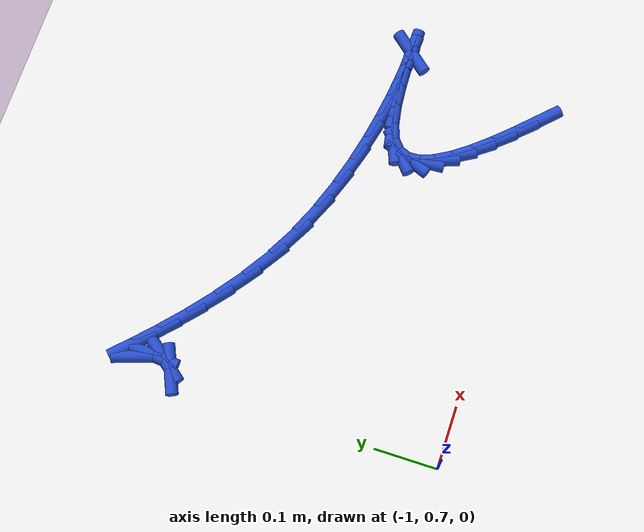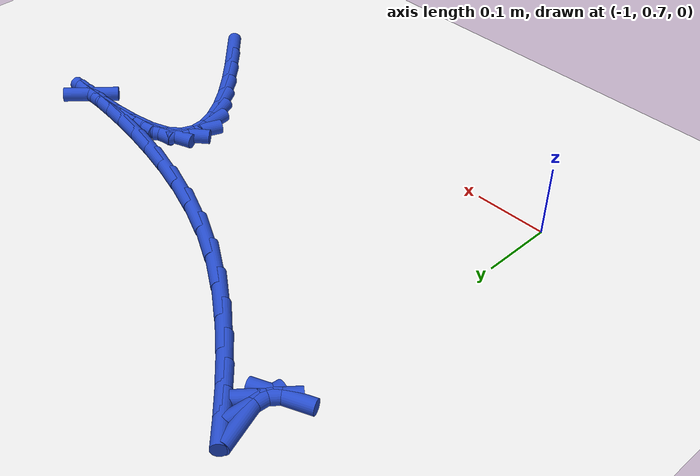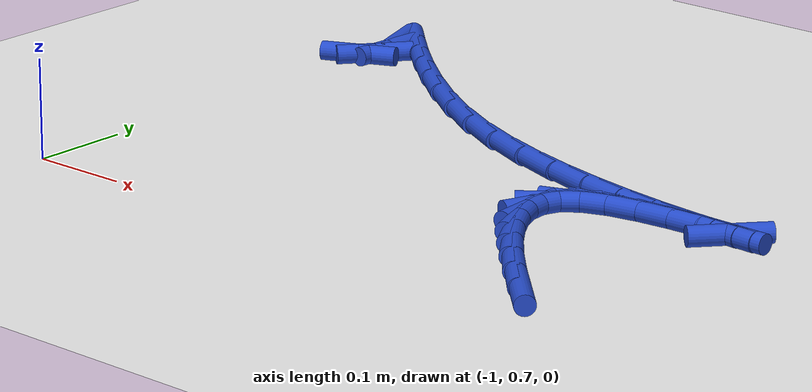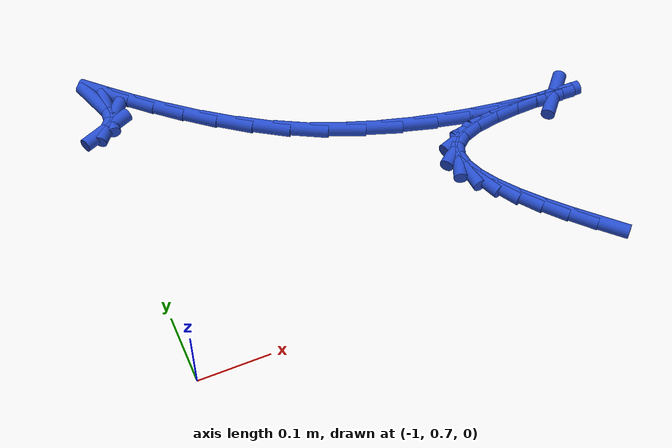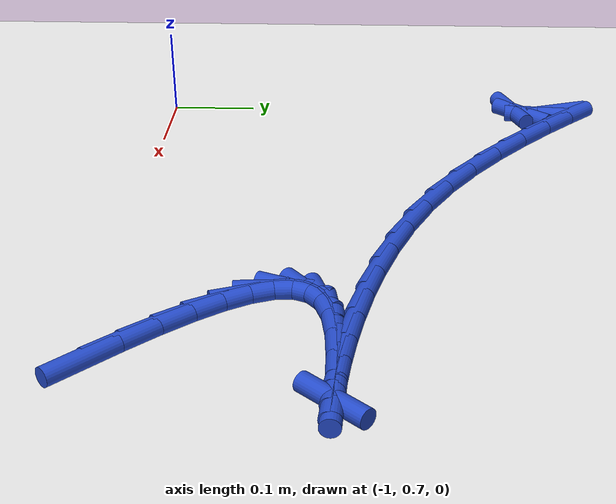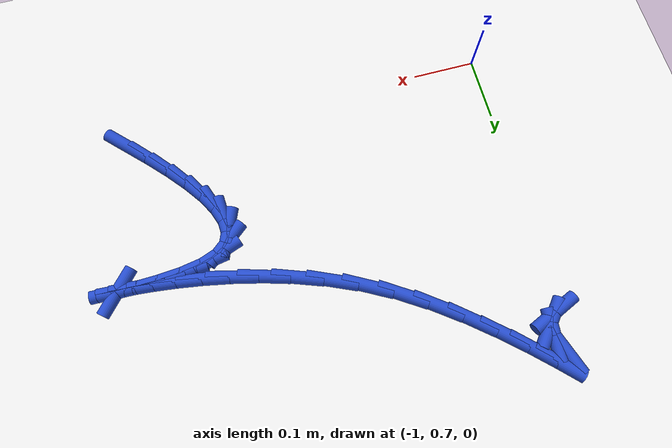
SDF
<sdf version="1.6">
 <world name="default">
  <model name="ground_plane">
   <static>1</static>
   <link name="link">
    <collision name="collision">
     <geometry><plane><normal>0 0 1</normal><size>100 100</size></plane></geometry>
     <surface><friction><ode><mu>100</mu><mu2>50</mu2></ode></friction></surface>
    </collision>
    <visual name="visual">
     <cast_shadows>0</cast_shadows>
     <geometry><plane><normal>0 0 1</normal><size>100 100</size></plane></geometry>
     <material>
      <script><uri>file://media/materials/scripts/gazebo.material</uri><name>Gazebo/WhiteGlow</name></script>
     </material>
    </visual>
   </link>
  </model>
  <model name="line">
   <link name="link_26">
    <pose>-0.41570506571818994 0.7080996524875088 0.01 0 1.57 -0.7872621207988969</pose>
    <collision name="collision">
     <geometry><cylinder><radius>0.01</radius><length>0.08</length></cylinder></geometry>
    </collision>
    <visual name="visual">
     <material>
      <script><name>Gazebo/Blue</name><uri>file://media/materials/scripts/gazebo.material</uri></script>
     </material>
     <geometry><cylinder><radius>0.01</radius><length>0.08</length></cylinder></geometry>
    </visual>
   </link>
   <link name="link_27">
    <pose>-0.4458480985646444 0.7383552659682033 0.01 0 1.57 -0.8197266237173515</pose>
    <collision name="collision">
     <geometry><cylinder><radius>0.01</radius><length>0.08</length></cylinder></geometry>
    </collision>
    <visual name="visual">
     <material>
      <script><name>Gazebo/Blue</name><uri>file://media/materials/scripts/gazebo.material</uri></script>
     </material>
     <geometry><cylinder><radius>0.01</radius><length>0.08</length></cylinder></geometry>
    </visual>
   </link>
   <link name="link_28">
    <pose>-0.473372103521446 0.7678369577929868 0.01 0 1.57 -0.8672294111577838</pose>
    <collision name="collision">
     <geometry><cylinder><radius>0.01</radius><length>0.08</length></cylinder></geometry>
    </collision>
    <visual name="visual">
     <material>
      <script><name>Gazebo/Blue</name><uri>file://media/materials/scripts/gazebo.material</uri></script>
     </material>
     <geometry><cylinder><radius>0.01</radius><length>0.08</length></cylinder></geometry>
    </visual>
   </link>
   <link name="link_29">
    <pose>-0.4973964942420587 0.7961541083735928 0.01 0 1.57 -0.937592499780401</pose>
    <collision name="collision">
     <geometry><cylinder><radius>0.01</radius><length>0.08</length></cylinder></geometry>
    </collision>
    <visual name="visual">
     <material>
      <script><name>Gazebo/Blue</name><uri>file://media/materials/scripts/gazebo.material</uri></script>
     </material>
     <geometry><cylinder><radius>0.01</radius><length>0.08</length></cylinder></geometry>
    </visual>
   </link>
   <link name="link_30">
    <pose>-0.517040684379947 0.8229160981217555 0.01 0 1.57 -1.0455140600285147</pose>
    <collision name="collision">
     <geometry><cylinder><radius>0.01</radius><length>0.08</length></cylinder></geometry>
    </collision>
    <visual name="visual">
     <material>
      <script><name>Gazebo/Blue</name><uri>file://media/materials/scripts/gazebo.material</uri></script>
     </material>
     <geometry><cylinder><radius>0.01</radius><length>0.08</length></cylinder></geometry>
    </visual>
   </link>
   <link name="link_31">
    <pose>-0.5314240875885752 0.8477323074492085 0.01 0 1.57 -1.219373759275083</pose>
    <collision name="collision">
     <geometry><cylinder><radius>0.01</radius><length>0.08</length></cylinder></geometry>
    </collision>
    <visual name="visual">
     <material>
      <script><name>Gazebo/Blue</name><uri>file://media/materials/scripts/gazebo.material</uri></script>
     </material>
     <geometry><cylinder><radius>0.01</radius><length>0.08</length></cylinder></geometry>
    </visual>
   </link>
   <link name="link_32">
    <pose>-0.5396661175214075 0.8702121167676854 0.01 0 1.57 -1.5091077105702009</pose>
    <collision name="collision">
     <geometry><cylinder><radius>0.01</radius><length>0.08</length></cylinder></geometry>
    </collision>
    <visual name="visual">
     <material>
      <script><name>Gazebo/Blue</name><uri>file://media/materials/scripts/gazebo.material</uri></script>
     </material>
     <geometry><cylinder><radius>0.01</radius><length>0.08</length></cylinder></geometry>
    </visual>
   </link>
   <link name="link_33">
    <pose>-0.540886187831908 0.8899649064889201 0.01 0 1.57 1.1888182687031352</pose>
    <collision name="collision">
     <geometry><cylinder><radius>0.01</radius><length>0.08</length></cylinder></geometry>
    </collision>
    <visual name="visual">
     <material>
      <script><name>Gazebo/Blue</name><uri>file://media/materials/scripts/gazebo.material</uri></script>
     </material>
     <geometry><cylinder><radius>0.01</radius><length>0.08</length></cylinder></geometry>
    </visual>
   </link>
   <link name="link_34">
    <pose>-0.5342037121735415 0.9066000570246465 0.01 0 1.57 0.7037851027339573</pose>
    <collision name="collision">
     <geometry><cylinder><radius>0.01</radius><length>0.08</length></cylinder></geometry>
    </collision>
    <visual name="visual">
     <material>
      <script><name>Gazebo/Blue</name><uri>file://media/materials/scripts/gazebo.material</uri></script>
     </material>
     <geometry><cylinder><radius>0.01</radius><length>0.08</length></cylinder></geometry>
    </visual>
   </link>
   <link name="link_35">
    <pose>-0.5187381041997718 0.9197269487865981 0.01 0 1.57 0.3552605912063692</pose>
    <collision name="collision">
     <geometry><cylinder><radius>0.01</radius><length>0.08</length></cylinder></geometry>
    </collision>
    <visual name="visual">
     <material>
      <script><name>Gazebo/Blue</name><uri>file://media/materials/scripts/gazebo.material</uri></script>
     </material>
     <geometry><cylinder><radius>0.01</radius><length>0.08</length></cylinder></geometry>
    </visual>
   </link>
   <link name="link_36">
    <pose>-0.4937736977974682 0.9289887825739277 0.01 0 1.57 0.1749443810822862</pose>
    <collision name="collision">
     <geometry><cylinder><radius>0.01</radius><length>0.08</length></cylinder></geometry>
    </collision>
    <visual name="visual">
     <material>
      <script><name>Gazebo/Blue</name><uri>file://media/materials/scripts/gazebo.material</uri></script>
     </material>
     <geometry><cylinder><radius>0.01</radius><length>0.08</length></cylinder></geometry>
    </visual>
   </link>
   <link name="link_37">
    <pose>-0.46167985544530693 0.9346614096497076 0.01 0 1.57 0.0853910090603869</pose>
    <collision name="collision">
     <geometry><cylinder><radius>0.01</radius><length>0.08</length></cylinder></geometry>
    </collision>
    <visual name="visual">
     <material>
      <script><name>Gazebo/Blue</name><uri>file://media/materials/scripts/gazebo.material</uri></script>
     </material>
     <geometry><cylinder><radius>0.01</radius><length>0.08</length></cylinder></geometry>
    </visual>
   </link>
   <link name="link_38">
    <pose>-0.42756234777719987 0.9375818397354689 0.01 0 1.57 0.0331062924889678</pose>
    <collision name="collision">
     <geometry><cylinder><radius>0.01</radius><length>0.08</length></cylinder></geometry>
    </collision>
    <visual name="visual">
     <material>
      <script><name>Gazebo/Blue</name><uri>file://media/materials/scripts/gazebo.material</uri></script>
     </material>
     <geometry><cylinder><radius>0.01</radius><length>0.08</length></cylinder></geometry>
    </visual>
   </link>
   <link name="link_39">
    <pose>-0.396621827128156 0.9386065400554644 0.01 0 1.57 -0.0006803154684444225</pose>
    <collision name="collision">
     <geometry><cylinder><radius>0.01</radius><length>0.08</length></cylinder></geometry>
    </collision>
    <visual name="visual">
     <material>
      <script><name>Gazebo/Blue</name><uri>file://media/materials/scripts/gazebo.material</uri></script>
     </material>
     <geometry><cylinder><radius>0.01</radius><length>0.08</length></cylinder></geometry>
    </visual>
   </link>
   <link name="link_40">
    <pose>-0.3740484094236778 0.9385911830078552 0.01 0 1.57 -0.031224819922408456</pose>
    <collision name="collision">
     <geometry><cylinder><radius>0.01</radius><length>0.08</length></cylinder></geometry>
    </collision>
    <visual name="visual">
     <material>
      <script><name>Gazebo/Blue</name><uri>file://media/materials/scripts/gazebo.material</uri></script>
     </material>
     <geometry><cylinder><radius>0.01</radius><length>0.08</length></cylinder></geometry>
    </visual>
   </link>
   <link name="link_41">
    <pose>-0.363179800390428 0.9382517023107881 0.01 0 1.57 0.8553237310310862</pose>
    <collision name="collision">
     <geometry><cylinder><radius>0.01</radius><length>0.08</length></cylinder></geometry>
    </collision>
    <visual name="visual">
     <material>
      <script><name>Gazebo/Blue</name><uri>file://media/materials/scripts/gazebo.material</uri></script>
     </material>
     <geometry><cylinder><radius>0.01</radius><length>0.08</length></cylinder></geometry>
    </visual>
   </link>
   <link name="link_42">
    <pose>-0.363393927532335 0.9380053212875225 0.01 0 1.57 -0.022178151660232938</pose>
    <collision name="collision">
     <geometry><cylinder><radius>0.01</radius><length>0.08</length></cylinder></geometry>
    </collision>
    <visual name="visual">
     <material>
      <script><name>Gazebo/Blue</name><uri>file://media/materials/scripts/gazebo.material</uri></script>
     </material>
     <geometry><cylinder><radius>0.01</radius><length>0.08</length></cylinder></geometry>
    </visual>
   </link>
   <link name="link_43">
    <pose>-0.3735587878399767 0.9382307960703674 0.01 0 1.57 -0.05662450311762661</pose>
    <collision name="collision">
     <geometry><cylinder><radius>0.01</radius><length>0.08</length></cylinder></geometry>
    </collision>
    <visual name="visual">
     <material>
      <script><name>Gazebo/Blue</name><uri>file://media/materials/scripts/gazebo.material</uri></script>
     </material>
     <geometry><cylinder><radius>0.01</radius><length>0.08</length></cylinder></geometry>
    </visual>
   </link>
   <link name="link_44">
    <pose>-0.3925423783039315 0.9393068827916329 0.01 0 1.57 -0.0862283700839167</pose>
    <collision name="collision">
     <geometry><cylinder><radius>0.01</radius><length>0.08</length></cylinder></geometry>
    </collision>
    <visual name="visual">
     <material>
      <script><name>Gazebo/Blue</name><uri>file://media/materials/scripts/gazebo.material</uri></script>
     </material>
     <geometry><cylinder><radius>0.01</radius><length>0.08</length></cylinder></geometry>
    </visual>
   </link>
   <link name="link_45">
    <pose>-0.41921269591477733 0.9416123375836283 0.01 0 1.57 -0.11724977139653188</pose>
    <collision name="collision">
     <geometry><cylinder><radius>0.01</radius><length>0.08</length></cylinder></geometry>
    </collision>
    <visual name="visual">
     <material>
      <script><name>Gazebo/Blue</name><uri>file://media/materials/scripts/gazebo.material</uri></script>
     </material>
     <geometry><cylinder><radius>0.01</radius><length>0.08</length></cylinder></geometry>
    </visual>
   </link>
   <link name="link_46">
    <pose>-0.4524377376630921 0.9455259165786635 0.01 0 1.57 -0.15150283060369207</pose>
    <collision name="collision">
     <geometry><cylinder><radius>0.01</radius><length>0.08</length></cylinder></geometry>
    </collision>
    <visual name="visual">
     <material>
      <script><name>Gazebo/Blue</name><uri>file://media/materials/scripts/gazebo.material</uri></script>
     </material>
     <geometry><cylinder><radius>0.01</radius><length>0.08</length></cylinder></geometry>
    </visual>
   </link>
   <link name="link_47">
    <pose>-0.4910855005394544 0.9514263759090478 0.01 0 1.57 -0.1901835714295367</pose>
    <collision name="collision">
     <geometry><cylinder><radius>0.01</radius><length>0.08</length></cylinder></geometry>
    </collision>
    <visual name="visual">
     <material>
      <script><name>Gazebo/Blue</name><uri>file://media/materials/scripts/gazebo.material</uri></script>
     </material>
     <geometry><cylinder><radius>0.01</radius><length>0.08</length></cylinder></geometry>
    </visual>
   </link>
   <link name="link_48">
    <pose>-0.5340239815344421 0.9596924717070909 0.01 0 1.57 -0.23446088229895862</pose>
    <collision name="collision">
     <geometry><cylinder><radius>0.01</radius><length>0.08</length></cylinder></geometry>
    </collision>
    <visual name="visual">
     <material>
      <script><name>Gazebo/Blue</name><uri>file://media/materials/scripts/gazebo.material</uri></script>
     </material>
     <geometry><cylinder><radius>0.01</radius><length>0.08</length></cylinder></geometry>
    </visual>
   </link>
   <link name="link_49">
    <pose>-0.5801211776386332 0.9707029601051029 0.01 0 1.57 -0.2856602179161771</pose>
    <collision name="collision">
     <geometry><cylinder><radius>0.01</radius><length>0.08</length></cylinder></geometry>
    </collision>
    <visual name="visual">
     <material>
      <script><name>Gazebo/Blue</name><uri>file://media/materials/scripts/gazebo.material</uri></script>
     </material>
     <geometry><cylinder><radius>0.01</radius><length>0.08</length></cylinder></geometry>
    </visual>
   </link>
   <link name="link_50">
    <pose>-0.6282450858426063 0.9848365972353929 0.01 0 1.57 -0.34535401380363107</pose>
    <collision name="collision">
     <geometry><cylinder><radius>0.01</radius><length>0.08</length></cylinder></geometry>
    </collision>
    <visual name="visual">
     <material>
      <script><name>Gazebo/Blue</name><uri>file://media/materials/scripts/gazebo.material</uri></script>
     </material>
     <geometry><cylinder><radius>0.01</radius><length>0.08</length></cylinder></geometry>
    </visual>
   </link>
   <link name="link_51">
    <pose>-0.6772637031369386 1.0024721392302707 0.01 0 1.57 -0.41540682454194283</pose>
    <collision name="collision">
     <geometry><cylinder><radius>0.01</radius><length>0.08</length></cylinder></geometry>
    </collision>
    <visual name="visual">
     <material>
      <script><name>Gazebo/Blue</name><uri>file://media/materials/scripts/gazebo.material</uri></script>
     </material>
     <geometry><cylinder><radius>0.01</radius><length>0.08</length></cylinder></geometry>
    </visual>
   </link>
   <link name="link_52">
    <pose>-0.7260450265122089 1.023988342222046 0.01 0 1.57 -0.49740272231836274</pose>
    <collision name="collision">
     <geometry><cylinder><radius>0.01</radius><length>0.08</length></cylinder></geometry>
    </collision>
    <visual name="visual">
     <material>
      <script><name>Gazebo/Blue</name><uri>file://media/materials/scripts/gazebo.material</uri></script>
     </material>
     <geometry><cylinder><radius>0.01</radius><length>0.08</length></cylinder></geometry>
    </visual>
   </link>
   <link name="link_53">
    <pose>-0.77346371686025 1.0497336010303155 0.01 0 1.57 -0.5776562725409702</pose>
    <collision name="collision">
     <geometry><cylinder><radius>0.01</radius><length>0.08</length></cylinder></geometry>
    </collision>
    <visual name="visual">
     <material>
      <script><name>Gazebo/Blue</name><uri>file://media/materials/scripts/gazebo.material</uri></script>
     </material>
     <geometry><cylinder><radius>0.01</radius><length>0.08</length></cylinder></geometry>
    </visual>
   </link>
   <link name="link_54">
    <pose>-0.8185933242843307 1.079150153958692 0.01 0 1.57 -0.6417391335260849</pose>
    <collision name="collision">
     <geometry><cylinder><radius>0.01</radius><length>0.08</length></cylinder></geometry>
    </collision>
    <visual name="visual">
     <material>
      <script><name>Gazebo/Blue</name><uri>file://media/materials/scripts/gazebo.material</uri></script>
     </material>
     <geometry><cylinder><radius>0.01</radius><length>0.08</length></cylinder></geometry>
    </visual>
   </link>
   <link name="link_55">
    <pose>-0.8607355137920972 1.1106409280002376 0.01 0 1.57 -0.6924833207442543</pose>
    <collision name="collision">
     <geometry><cylinder><radius>0.01</radius><length>0.08</length></cylinder></geometry>
    </collision>
    <visual name="visual">
     <material>
      <script><name>Gazebo/Blue</name><uri>file://media/materials/scripts/gazebo.material</uri></script>
     </material>
     <geometry><cylinder><radius>0.01</radius><length>0.08</length></cylinder></geometry>
    </visual>
   </link>
   <link name="link_56">
    <pose>-0.8992044938945157 1.1425517008577826 0.01 0 1.57 -0.7324516487851053</pose>
    <collision name="collision">
     <geometry><cylinder><radius>0.01</radius><length>0.08</length></cylinder></geometry>
    </collision>
    <visual name="visual">
     <material>
      <script><name>Gazebo/Blue</name><uri>file://media/materials/scripts/gazebo.material</uri></script>
     </material>
     <geometry><cylinder><radius>0.01</radius><length>0.08</length></cylinder></geometry>
    </visual>
   </link>
   <link name="link_57">
    <pose>-0.9333144731025531 1.1732282502341584 0.01 0 1.57 -0.7629391555437544</pose>
    <collision name="collision">
     <geometry><cylinder><radius>0.01</radius><length>0.08</length></cylinder></geometry>
    </collision>
    <visual name="visual">
     <material>
      <script><name>Gazebo/Blue</name><uri>file://media/materials/scripts/gazebo.material</uri></script>
     </material>
     <geometry><cylinder><radius>0.01</radius><length>0.08</length></cylinder></geometry>
    </visual>
   </link>
   <link name="link_58">
    <pose>-0.9623796599271763 1.2010163538321958 0.01 0 1.57 -0.7834838815795583</pose>
    <collision name="collision">
     <geometry><cylinder><radius>0.01</radius><length>0.08</length></cylinder></geometry>
    </collision>
    <visual name="visual">
     <material>
      <script><name>Gazebo/Blue</name><uri>file://media/materials/scripts/gazebo.material</uri></script>
     </material>
     <geometry><cylinder><radius>0.01</radius><length>0.08</length></cylinder></geometry>
    </visual>
   </link>
   <link name="link_65">
    <pose>-0.9777074352610932 1.187461204476533 0.01 0 1.57 -1.2472370324191147</pose>
    <collision name="collision">
     <geometry><cylinder><radius>0.01</radius><length>0.08</length></cylinder></geometry>
    </collision>
    <visual name="visual">
     <material>
      <script><name>Gazebo/Blue</name><uri>file://media/materials/scripts/gazebo.material</uri></script>
     </material>
     <geometry><cylinder><radius>0.01</radius><length>0.08</length></cylinder></geometry>
    </visual>
   </link>
   <link name="link_66">
    <pose>-0.9695745295339376 1.1632087966651505 0.01 0 1.57 1.4844358170257046</pose>
    <collision name="collision">
     <geometry><cylinder><radius>0.01</radius><length>0.08</length></cylinder></geometry>
    </collision>
    <visual name="visual">
     <material>
      <script><name>Gazebo/Blue</name><uri>file://media/materials/scripts/gazebo.material</uri></script>
     </material>
     <geometry><cylinder><radius>0.01</radius><length>0.08</length></cylinder></geometry>
    </visual>
   </link>
   <link name="link_67">
    <pose>-0.9711418060684116 1.1451058665340856 0.01 0 1.57 0.8875218449737373</pose>
    <collision name="collision">
     <geometry><cylinder><radius>0.01</radius><length>0.08</length></cylinder></geometry>
    </collision>
    <visual name="visual">
     <material>
      <script><name>Gazebo/Blue</name><uri>file://media/materials/scripts/gazebo.material</uri></script>
     </material>
     <geometry><cylinder><radius>0.01</radius><length>0.08</length></cylinder></geometry>
    </visual>
   </link>
   <link name="link_68">
    <pose>-0.9814403913416481 1.1324554646187974 0.01 0 1.57 0.41314331284650657</pose>
    <collision name="collision">
     <geometry><cylinder><radius>0.01</radius><length>0.08</length></cylinder></geometry>
    </collision>
    <visual name="visual">
     <material>
      <script><name>Gazebo/Blue</name><uri>file://media/materials/scripts/gazebo.material</uri></script>
     </material>
     <geometry><cylinder><radius>0.01</radius><length>0.08</length></cylinder></geometry>
    </visual>
   </link>
  </model>
 </world>
</sdf>
